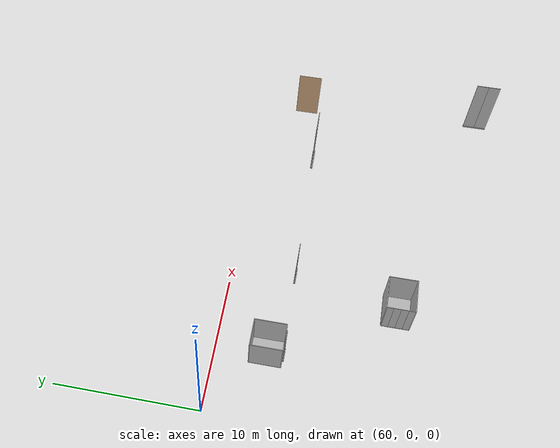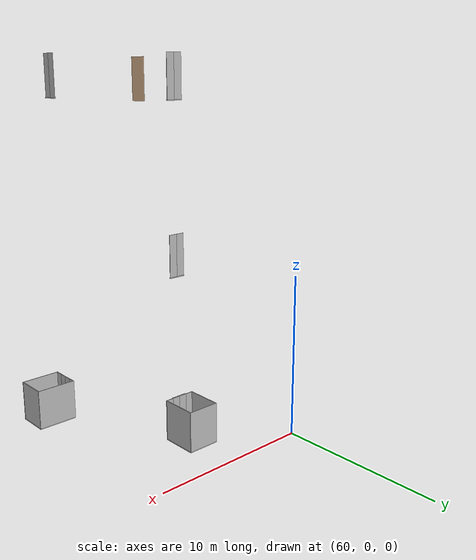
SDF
<sdf version="1.7">
 <world name="world">
  <include><uri>model://sun</uri></include>
  <model name="door6">
   <pose>67.95 -4.0 20.0 0 0 -1.5707963267948966</pose>
   <plugin name="door" filename="libdoor.so">
    <v_max_door>0.5</v_max_door>
    <a_max_door>0.3</a_max_door>
    <a_nom_door>0.15</a_nom_door>
    <dx_min_door>0.01</dx_min_door>
    <f_max_door>500.0</f_max_door>
    <door name="door6" type="SwingDoor" left_joint_name="left_joint" right_joint_name="empty_joint"/>
   </plugin>
   <link name="left">
    <pose>0 0 1.11 0 0 0</pose>
    <visual name="left_visual">
     <geometry><box><size>0.99 0.03 2.2</size></box></geometry>
     <material><ambient>0.5 0.25 0 0.6</ambient><diffuse>0.5 0.25 0 0.6</diffuse></material>
    </visual>
    <collision name="left_collision">
     <geometry><box><size>0.99 0.03 2.2</size></box></geometry>
     <surface><contact><collide_bitmask>0x02</collide_bitmask></contact></surface>
    </collision>
    <inertial>
     <mass>50.0</mass>
     <inertia><ixx>20.17041666666667</ixx><iyy>24.250416666666673</iyy><izz>4.0875</izz></inertia>
    </inertial>
   </link>
   <joint name="left_joint" type="revolute">
    <parent>world</parent>
    <child>left</child>
    <axis><xyz>0 0 1</xyz><limit><lower>-1.57</lower><upper>0</upper></limit></axis>
    <pose>0.5 0 0 0 0 0</pose>
   </joint>
  </model>
  <model name="ShaftDoor_cargo_lift2_L1_door">
   <pose>65.0625 -4.675 0.0 0 0 0.0</pose>
   <link name="right_door">
    <pose>0.25 0 1.25 0 0 0</pose>
    <visual name="right_door_visual">
     <geometry><box><size>0.5 0.03 2.5</size></box></geometry>
     <material>
      <ambient>0.5 0.5 0.5 1</ambient>
      <diffuse>0.7 0.7 0.7 1</diffuse>
      <specular>0.6 0.6 0.6 1</specular>
      <emissive>0.1 0.1 0.1 1</emissive>
     </material>
    </visual>
    <collision name="right_door_collision">
     <geometry><box><size>0.5 0.03 2.5</size></box></geometry>
     <surface><contact><collide_bitmask>0x02</collide_bitmask></contact></surface>
    </collision>
   </link>
   <joint name="right_joint" type="prismatic">
    <parent>world</parent>
    <child>right_door</child>
    <axis><xyz>1 0 0</xyz><limit><lower>0</lower><upper>0.5</upper></limit></axis>
   </joint>
   <link name="left_door">
    <pose>-0.25 0 1.25 0 0 0</pose>
    <visual name="left_door_visual">
     <geometry><box><size>0.5 0.03 2.5</size></box></geometry>
     <material>
      <ambient>0.5 0.5 0.5 1</ambient>
      <diffuse>0.7 0.7 0.7 1</diffuse>
      <specular>0.6 0.6 0.6 1</specular>
      <emissive>0.1 0.1 0.1 1</emissive>
     </material>
    </visual>
    <collision name="left_door_collision">
     <geometry><box><size>0.5 0.03 2.5</size></box></geometry>
     <surface><contact><collide_bitmask>0x02</collide_bitmask></contact></surface>
    </collision>
   </link>
   <joint name="left_joint" type="prismatic">
    <parent>world</parent>
    <child>left_door</child>
    <axis><xyz>1 0 0</xyz><limit><lower>-0.5</lower><upper>0</upper></limit></axis>
   </joint>
   <link name="ramp">
    <pose>0 0 -0.025 0 0 0</pose>
    <visual name="ramp_visual">
     <geometry><box><size>1.0 0.1 0.05</size></box></geometry>
     <material>
      <ambient>0.5 0.5 0.5 1</ambient>
      <diffuse>0.7 0.7 0.7 1</diffuse>
      <specular>0.6 0.6 0.6 1</specular>
      <emissive>0.1 0.1 0.1 1</emissive>
     </material>
    </visual>
    <collision name="ramp_collision">
     <geometry><box><size>1.0 0.1 0.05</size></box></geometry>
     <surface><contact><collide_bitmask>0x02</collide_bitmask></contact></surface>
    </collision>
   </link>
   <joint name="ramp_joint" type="fixed"><parent>world</parent><child>ramp</child></joint>
   <plugin name="door" filename="libdoor.so">
    <v_max_door>0.3</v_max_door>
    <a_max_door>0.2</a_max_door>
    <a_nom_door>0.1</a_nom_door>
    <dx_min_door>0.0001</dx_min_door>
    <f_max_door>35.0</f_max_door>
    <door left_joint_name="left_joint" name="ShaftDoor_cargo_lift2_L1_door" right_joint_name="right_joint" type="DoubleSlidingDoor"/>
   </plugin>
  </model>
  <model name="ShaftDoor_cargo_lift2_L2_door">
   <pose>65.0625 -4.675 10.0 0 0 0.0</pose>
   <link name="right_door">
    <pose>0.25 0 1.25 0 0 0</pose>
    <visual name="right_door_visual">
     <geometry><box><size>0.5 0.03 2.5</size></box></geometry>
     <material>
      <ambient>0.5 0.5 0.5 1</ambient>
      <diffuse>0.7 0.7 0.7 1</diffuse>
      <specular>0.6 0.6 0.6 1</specular>
      <emissive>0.1 0.1 0.1 1</emissive>
     </material>
    </visual>
    <collision name="right_door_collision">
     <geometry><box><size>0.5 0.03 2.5</size></box></geometry>
     <surface><contact><collide_bitmask>0x02</collide_bitmask></contact></surface>
    </collision>
   </link>
   <joint name="right_joint" type="prismatic">
    <parent>world</parent>
    <child>right_door</child>
    <axis><xyz>1 0 0</xyz><limit><lower>0</lower><upper>0.5</upper></limit></axis>
   </joint>
   <link name="left_door">
    <pose>-0.25 0 1.25 0 0 0</pose>
    <visual name="left_door_visual">
     <geometry><box><size>0.5 0.03 2.5</size></box></geometry>
     <material>
      <ambient>0.5 0.5 0.5 1</ambient>
      <diffuse>0.7 0.7 0.7 1</diffuse>
      <specular>0.6 0.6 0.6 1</specular>
      <emissive>0.1 0.1 0.1 1</emissive>
     </material>
    </visual>
    <collision name="left_door_collision">
     <geometry><box><size>0.5 0.03 2.5</size></box></geometry>
     <surface><contact><collide_bitmask>0x02</collide_bitmask></contact></surface>
    </collision>
   </link>
   <joint name="left_joint" type="prismatic">
    <parent>world</parent>
    <child>left_door</child>
    <axis><xyz>1 0 0</xyz><limit><lower>-0.5</lower><upper>0</upper></limit></axis>
   </joint>
   <link name="ramp">
    <pose>0 0 -0.025 0 0 0</pose>
    <visual name="ramp_visual">
     <geometry><box><size>1.0 0.1 0.05</size></box></geometry>
     <material>
      <ambient>0.5 0.5 0.5 1</ambient>
      <diffuse>0.7 0.7 0.7 1</diffuse>
      <specular>0.6 0.6 0.6 1</specular>
      <emissive>0.1 0.1 0.1 1</emissive>
     </material>
    </visual>
    <collision name="ramp_collision">
     <geometry><box><size>1.0 0.1 0.05</size></box></geometry>
     <surface><contact><collide_bitmask>0x02</collide_bitmask></contact></surface>
    </collision>
   </link>
   <joint name="ramp_joint" type="fixed"><parent>world</parent><child>ramp</child></joint>
   <plugin name="door" filename="libdoor.so">
    <v_max_door>0.3</v_max_door>
    <a_max_door>0.2</a_max_door>
    <a_nom_door>0.1</a_nom_door>
    <dx_min_door>0.0001</dx_min_door>
    <f_max_door>35.0</f_max_door>
    <door left_joint_name="left_joint" name="ShaftDoor_cargo_lift2_L2_door" right_joint_name="right_joint" type="DoubleSlidingDoor"/>
   </plugin>
  </model>
  <model name="ShaftDoor_cargo_lift2_L3_door">
   <pose>65.0625 -4.675 20.0 0 0 0.0</pose>
   <link name="right_door">
    <pose>0.25 0 1.25 0 0 0</pose>
    <visual name="right_door_visual">
     <geometry><box><size>0.5 0.03 2.5</size></box></geometry>
     <material>
      <ambient>0.5 0.5 0.5 1</ambient>
      <diffuse>0.7 0.7 0.7 1</diffuse>
      <specular>0.6 0.6 0.6 1</specular>
      <emissive>0.1 0.1 0.1 1</emissive>
     </material>
    </visual>
    <collision name="right_door_collision">
     <geometry><box><size>0.5 0.03 2.5</size></box></geometry>
     <surface><contact><collide_bitmask>0x02</collide_bitmask></contact></surface>
    </collision>
   </link>
   <joint name="right_joint" type="prismatic">
    <parent>world</parent>
    <child>right_door</child>
    <axis><xyz>1 0 0</xyz><limit><lower>0</lower><upper>0.5</upper></limit></axis>
   </joint>
   <link name="left_door">
    <pose>-0.25 0 1.25 0 0 0</pose>
    <visual name="left_door_visual">
     <geometry><box><size>0.5 0.03 2.5</size></box></geometry>
     <material>
      <ambient>0.5 0.5 0.5 1</ambient>
      <diffuse>0.7 0.7 0.7 1</diffuse>
      <specular>0.6 0.6 0.6 1</specular>
      <emissive>0.1 0.1 0.1 1</emissive>
     </material>
    </visual>
    <collision name="left_door_collision">
     <geometry><box><size>0.5 0.03 2.5</size></box></geometry>
     <surface><contact><collide_bitmask>0x02</collide_bitmask></contact></surface>
    </collision>
   </link>
   <joint name="left_joint" type="prismatic">
    <parent>world</parent>
    <child>left_door</child>
    <axis><xyz>1 0 0</xyz><limit><lower>-0.5</lower><upper>0</upper></limit></axis>
   </joint>
   <link name="ramp">
    <pose>0 0 -0.025 0 0 0</pose>
    <visual name="ramp_visual">
     <geometry><box><size>1.0 0.1 0.05</size></box></geometry>
     <material>
      <ambient>0.5 0.5 0.5 1</ambient>
      <diffuse>0.7 0.7 0.7 1</diffuse>
      <specular>0.6 0.6 0.6 1</specular>
      <emissive>0.1 0.1 0.1 1</emissive>
     </material>
    </visual>
    <collision name="ramp_collision">
     <geometry><box><size>1.0 0.1 0.05</size></box></geometry>
     <surface><contact><collide_bitmask>0x02</collide_bitmask></contact></surface>
    </collision>
   </link>
   <joint name="ramp_joint" type="fixed"><parent>world</parent><child>ramp</child></joint>
   <plugin name="door" filename="libdoor.so">
    <v_max_door>0.3</v_max_door>
    <a_max_door>0.2</a_max_door>
    <a_nom_door>0.1</a_nom_door>
    <dx_min_door>0.0001</dx_min_door>
    <f_max_door>35.0</f_max_door>
    <door left_joint_name="left_joint" name="ShaftDoor_cargo_lift2_L3_door" right_joint_name="right_joint" type="DoubleSlidingDoor"/>
   </plugin>
  </model>
  <model name="cargo_lift2">
   <link name="platform">
    <inertial>
     <mass>1200</mass>
     <inertia><ixx>400.25000000000006</ixx><iyy>506.50000000000006</iyy><izz>906.25</izz></inertia>
    </inertial>
    <visual name="floor">
     <pose>0 0 -0.025 0 0 0</pose>
     <geometry><box><size>2.0 2.25 0.05</size></box></geometry>
     <material>
      <ambient>0.5 0.5 0.5 1</ambient>
      <diffuse>0.7 0.7 0.7 1</diffuse>
      <specular>0.6 0.6 0.6 1</specular>
      <emissive>0.1 0.1 0.1 1</emissive>
     </material>
    </visual>
    <collision name="floor">
     <pose>0 0 -0.025 0 0 0</pose>
     <geometry><box><size>2.0 2.25 0.05</size></box></geometry>
     <surface><contact><collide_bitmask>0x01</collide_bitmask></contact></surface>
    </collision>
    <visual name="frontwall1">
     <pose>0.0 1.1 1.25 0 0 0</pose>
     <geometry><box><size>2.0 0.05 2.5</size></box></geometry>
     <material>
      <ambient>0.5 0.5 0.5 1</ambient>
      <diffuse>0.7 0.7 0.7 1</diffuse>
      <specular>0.6 0.6 0.6 1</specular>
      <emissive>0.1 0.1 0.1 1</emissive>
     </material>
    </visual>
    <collision name="frontwall1">
     <pose>0.0 1.1 1.25 0 0 0</pose>
     <geometry><box><size>2.0 0.05 2.5</size></box></geometry>
     <surface><contact><collide_bitmask>0x01</collide_bitmask></contact></surface>
    </collision>
    <visual name="backwall1">
     <pose>-0.75 -1.1 1.25 0 0 0</pose>
     <geometry><box><size>0.5 0.05 2.5</size></box></geometry>
     <material>
      <ambient>0.5 0.5 0.5 1</ambient>
      <diffuse>0.7 0.7 0.7 1</diffuse>
      <specular>0.6 0.6 0.6 1</specular>
      <emissive>0.1 0.1 0.1 1</emissive>
     </material>
    </visual>
    <collision name="backwall1">
     <pose>-0.75 -1.1 1.25 0 0 0</pose>
     <geometry><box><size>0.5 0.05 2.5</size></box></geometry>
     <surface><contact><collide_bitmask>0x01</collide_bitmask></contact></surface>
    </collision>
    <visual name="backwall2">
     <pose>0.75 -1.1 1.25 0 0 0</pose>
     <geometry><box><size>0.5 0.05 2.5</size></box></geometry>
     <material>
      <ambient>0.5 0.5 0.5 1</ambient>
      <diffuse>0.7 0.7 0.7 1</diffuse>
      <specular>0.6 0.6 0.6 1</specular>
      <emissive>0.1 0.1 0.1 1</emissive>
     </material>
    </visual>
    <collision name="backwall2">
     <pose>0.75 -1.1 1.25 0 0 0</pose>
     <geometry><box><size>0.5 0.05 2.5</size></box></geometry>
     <surface><contact><collide_bitmask>0x01</collide_bitmask></contact></surface>
    </collision>
    <visual name="leftwall1">
     <pose>-0.975 0.0 1.25 0 0 1.5707963267948966</pose>
     <geometry><box><size>2.15 0.05 2.5</size></box></geometry>
     <material>
      <ambient>0.5 0.5 0.5 1</ambient>
      <diffuse>0.7 0.7 0.7 1</diffuse>
      <specular>0.6 0.6 0.6 1</specular>
      <emissive>0.1 0.1 0.1 1</emissive>
     </material>
    </visual>
    <collision name="leftwall1">
     <pose>-0.975 0.0 1.25 0 0 1.5707963267948966</pose>
     <geometry><box><size>2.15 0.05 2.5</size></box></geometry>
     <surface><contact><collide_bitmask>0x01</collide_bitmask></contact></surface>
    </collision>
    <visual name="rightwall1">
     <pose>0.975 0.0 1.25 0 0 1.5707963267948966</pose>
     <geometry><box><size>2.15 0.05 2.5</size></box></geometry>
     <material>
      <ambient>0.5 0.5 0.5 1</ambient>
      <diffuse>0.7 0.7 0.7 1</diffuse>
      <specular>0.6 0.6 0.6 1</specular>
      <emissive>0.1 0.1 0.1 1</emissive>
     </material>
    </visual>
    <collision name="rightwall1">
     <pose>0.975 0.0 1.25 0 0 1.5707963267948966</pose>
     <geometry><box><size>2.15 0.05 2.5</size></box></geometry>
     <surface><contact><collide_bitmask>0x01</collide_bitmask></contact></surface>
    </collision>
   </link>
   <joint name="cabin_joint" type="prismatic">
    <parent>world</parent>
    <child>platform</child>
    <axis><xyz>0 0 1</xyz></axis>
   </joint>
   <model name="CabinDoor_cargo_lift2_door">
    <pose>0.0 -1.1 0 0 0 0.0</pose>
    <link name="right_door">
     <pose>0.25 0 1.25 0 0 0</pose>
     <visual name="right_door_visual">
      <geometry><box><size>0.5 0.03 2.5</size></box></geometry>
      <material>
       <ambient>0.5 0.5 0.5 1</ambient>
       <diffuse>0.7 0.7 0.7 1</diffuse>
       <specular>0.6 0.6 0.6 1</specular>
       <emissive>0.1 0.1 0.1 1</emissive>
      </material>
     </visual>
     <collision name="right_door_collision">
      <geometry><box><size>0.5 0.03 2.5</size></box></geometry>
      <surface><contact><collide_bitmask>0x02</collide_bitmask></contact></surface>
     </collision>
    </link>
    <joint name="right_joint" type="prismatic">
     <parent>platform</parent>
     <child>right_door</child>
     <axis><xyz>1 0 0</xyz><limit><lower>0</lower><upper>0.5</upper></limit></axis>
    </joint>
    <link name="left_door">
     <pose>-0.25 0 1.25 0 0 0</pose>
     <visual name="left_door_visual">
      <geometry><box><size>0.5 0.03 2.5</size></box></geometry>
      <material>
       <ambient>0.5 0.5 0.5 1</ambient>
       <diffuse>0.7 0.7 0.7 1</diffuse>
       <specular>0.6 0.6 0.6 1</specular>
       <emissive>0.1 0.1 0.1 1</emissive>
      </material>
     </visual>
     <collision name="left_door_collision">
      <geometry><box><size>0.5 0.03 2.5</size></box></geometry>
      <surface><contact><collide_bitmask>0x02</collide_bitmask></contact></surface>
     </collision>
    </link>
    <joint name="left_joint" type="prismatic">
     <parent>platform</parent>
     <child>left_door</child>
     <axis><xyz>1 0 0</xyz><limit><lower>-0.5</lower><upper>0</upper></limit></axis>
    </joint>
    <plugin name="door" filename="libdoor.so">
     <v_max_door>0.3</v_max_door>
     <a_max_door>0.2</a_max_door>
     <a_nom_door>0.1</a_nom_door>
     <dx_min_door>0.0001</dx_min_door>
     <f_max_door>35.0</f_max_door>
     <door left_joint_name="left_joint" name="CabinDoor_cargo_lift2_door" right_joint_name="right_joint" type="DoubleSlidingDoor"/>
    </plugin>
   </model>
   <plugin name="lift" filename="liblift.so">
    <lift_name>cargo_lift2</lift_name>
    <floor name="L1" elevation="0.0">
     <door_pair cabin_door="CabinDoor_cargo_lift2_door" shaft_door="ShaftDoor_cargo_lift2_L1_door"/>
    </floor>
    <floor name="L2" elevation="10.0">
     <door_pair cabin_door="CabinDoor_cargo_lift2_door" shaft_door="ShaftDoor_cargo_lift2_L2_door"/>
    </floor>
    <floor name="L3" elevation="20.0">
     <door_pair cabin_door="CabinDoor_cargo_lift2_door" shaft_door="ShaftDoor_cargo_lift2_L3_door"/>
    </floor>
    <initial_floor>L1</initial_floor>
    <v_max_cabin>2.0</v_max_cabin>
    <a_max_cabin>1.2</a_max_cabin>
    <a_nom_cabin>1.0</a_nom_cabin>
    <dx_min_cabin>0.001</dx_min_cabin>
    <f_max_cabin>25323.0</f_max_cabin>
    <cabin_joint_name>cabin_joint</cabin_joint_name>
   </plugin>
   <pose>65.0625 -3.5 0 0 0 0.0</pose>
  </model>
  <model name="ShaftDoor_guest_lift3_L3_door">
   <pose>68.525 -11.875 20.0 0 0 1.5708</pose>
   <link name="right_door">
    <pose>0.25 0 1.25 0 0 0</pose>
    <visual name="right_door_visual">
     <geometry><box><size>0.5 0.03 2.5</size></box></geometry>
     <material>
      <ambient>0.5 0.5 0.5 1</ambient>
      <diffuse>0.7 0.7 0.7 1</diffuse>
      <specular>0.6 0.6 0.6 1</specular>
      <emissive>0.1 0.1 0.1 1</emissive>
     </material>
    </visual>
    <collision name="right_door_collision">
     <geometry><box><size>0.5 0.03 2.5</size></box></geometry>
     <surface><contact><collide_bitmask>0x02</collide_bitmask></contact></surface>
    </collision>
   </link>
   <joint name="right_joint" type="prismatic">
    <parent>world</parent>
    <child>right_door</child>
    <axis><xyz>1 0 0</xyz><limit><lower>0</lower><upper>0.5</upper></limit></axis>
   </joint>
   <link name="left_door">
    <pose>-0.25 0 1.25 0 0 0</pose>
    <visual name="left_door_visual">
     <geometry><box><size>0.5 0.03 2.5</size></box></geometry>
     <material>
      <ambient>0.5 0.5 0.5 1</ambient>
      <diffuse>0.7 0.7 0.7 1</diffuse>
      <specular>0.6 0.6 0.6 1</specular>
      <emissive>0.1 0.1 0.1 1</emissive>
     </material>
    </visual>
    <collision name="left_door_collision">
     <geometry><box><size>0.5 0.03 2.5</size></box></geometry>
     <surface><contact><collide_bitmask>0x02</collide_bitmask></contact></surface>
    </collision>
   </link>
   <joint name="left_joint" type="prismatic">
    <parent>world</parent>
    <child>left_door</child>
    <axis><xyz>1 0 0</xyz><limit><lower>-0.5</lower><upper>0</upper></limit></axis>
   </joint>
   <link name="ramp">
    <pose>0 0 -0.025 0 0 0</pose>
    <visual name="ramp_visual">
     <geometry><box><size>1.0 0.1 0.05</size></box></geometry>
     <material>
      <ambient>0.5 0.5 0.5 1</ambient>
      <diffuse>0.7 0.7 0.7 1</diffuse>
      <specular>0.6 0.6 0.6 1</specular>
      <emissive>0.1 0.1 0.1 1</emissive>
     </material>
    </visual>
    <collision name="ramp_collision">
     <geometry><box><size>1.0 0.1 0.05</size></box></geometry>
     <surface><contact><collide_bitmask>0x02</collide_bitmask></contact></surface>
    </collision>
   </link>
   <joint name="ramp_joint" type="fixed"><parent>world</parent><child>ramp</child></joint>
   <plugin name="door" filename="libdoor.so">
    <v_max_door>0.3</v_max_door>
    <a_max_door>0.2</a_max_door>
    <a_nom_door>0.1</a_nom_door>
    <dx_min_door>0.0001</dx_min_door>
    <f_max_door>35.0</f_max_door>
    <door left_joint_name="left_joint" name="ShaftDoor_guest_lift3_L3_door" right_joint_name="right_joint" type="DoubleSlidingDoor"/>
   </plugin>
  </model>
  <model name="guest_lift3">
   <link name="platform">
    <inertial>
     <mass>1200</mass>
     <inertia><ixx>625.25</ixx><iyy>400.25000000000006</iyy><izz>1025.0</izz></inertia>
    </inertial>
    <visual name="floor">
     <pose>0 0 -0.025 0 0 0</pose>
     <geometry><box><size>2.5 2.0 0.05</size></box></geometry>
     <material>
      <ambient>0.5 0.5 0.5 1</ambient>
      <diffuse>0.7 0.7 0.7 1</diffuse>
      <specular>0.6 0.6 0.6 1</specular>
      <emissive>0.1 0.1 0.1 1</emissive>
     </material>
    </visual>
    <collision name="floor">
     <pose>0 0 -0.025 0 0 0</pose>
     <geometry><box><size>2.5 2.0 0.05</size></box></geometry>
     <surface><contact><collide_bitmask>0x01</collide_bitmask></contact></surface>
    </collision>
    <visual name="frontwall1">
     <pose>0.0 0.975 1.25 0 0 0</pose>
     <geometry><box><size>2.5 0.05 2.5</size></box></geometry>
     <material>
      <ambient>0.5 0.5 0.5 1</ambient>
      <diffuse>0.7 0.7 0.7 1</diffuse>
      <specular>0.6 0.6 0.6 1</specular>
      <emissive>0.1 0.1 0.1 1</emissive>
     </material>
    </visual>
    <collision name="frontwall1">
     <pose>0.0 0.975 1.25 0 0 0</pose>
     <geometry><box><size>2.5 0.05 2.5</size></box></geometry>
     <surface><contact><collide_bitmask>0x01</collide_bitmask></contact></surface>
    </collision>
    <visual name="backwall1">
     <pose>0.0 -0.975 1.25 0 0 0</pose>
     <geometry><box><size>2.5 0.05 2.5</size></box></geometry>
     <material>
      <ambient>0.5 0.5 0.5 1</ambient>
      <diffuse>0.7 0.7 0.7 1</diffuse>
      <specular>0.6 0.6 0.6 1</specular>
      <emissive>0.1 0.1 0.1 1</emissive>
     </material>
    </visual>
    <collision name="backwall1">
     <pose>0.0 -0.975 1.25 0 0 0</pose>
     <geometry><box><size>2.5 0.05 2.5</size></box></geometry>
     <surface><contact><collide_bitmask>0x01</collide_bitmask></contact></surface>
    </collision>
    <visual name="leftwall1">
     <pose>-1.225 -0.725 1.25 0 0 1.5707963267948966</pose>
     <geometry><box><size>0.44999999999999996 0.05 2.5</size></box></geometry>
     <material>
      <ambient>0.5 0.5 0.5 1</ambient>
      <diffuse>0.7 0.7 0.7 1</diffuse>
      <specular>0.6 0.6 0.6 1</specular>
      <emissive>0.1 0.1 0.1 1</emissive>
     </material>
    </visual>
    <collision name="leftwall1">
     <pose>-1.225 -0.725 1.25 0 0 1.5707963267948966</pose>
     <geometry><box><size>0.44999999999999996 0.05 2.5</size></box></geometry>
     <surface><contact><collide_bitmask>0x01</collide_bitmask></contact></surface>
    </collision>
    <visual name="leftwall2">
     <pose>-1.225 0.725 1.25 0 0 1.5707963267948966</pose>
     <geometry><box><size>0.44999999999999996 0.05 2.5</size></box></geometry>
     <material>
      <ambient>0.5 0.5 0.5 1</ambient>
      <diffuse>0.7 0.7 0.7 1</diffuse>
      <specular>0.6 0.6 0.6 1</specular>
      <emissive>0.1 0.1 0.1 1</emissive>
     </material>
    </visual>
    <collision name="leftwall2">
     <pose>-1.225 0.725 1.25 0 0 1.5707963267948966</pose>
     <geometry><box><size>0.44999999999999996 0.05 2.5</size></box></geometry>
     <surface><contact><collide_bitmask>0x01</collide_bitmask></contact></surface>
    </collision>
    <visual name="rightwall1">
     <pose>1.225 0.0 1.25 0 0 1.5707963267948966</pose>
     <geometry><box><size>1.9 0.05 2.5</size></box></geometry>
     <material>
      <ambient>0.5 0.5 0.5 1</ambient>
      <diffuse>0.7 0.7 0.7 1</diffuse>
      <specular>0.6 0.6 0.6 1</specular>
      <emissive>0.1 0.1 0.1 1</emissive>
     </material>
    </visual>
    <collision name="rightwall1">
     <pose>1.225 0.0 1.25 0 0 1.5707963267948966</pose>
     <geometry><box><size>1.9 0.05 2.5</size></box></geometry>
     <surface><contact><collide_bitmask>0x01</collide_bitmask></contact></surface>
    </collision>
   </link>
   <joint name="cabin_joint" type="prismatic">
    <parent>world</parent>
    <child>platform</child>
    <axis><xyz>0 0 1</xyz></axis>
   </joint>
   <model name="CabinDoor_guest_lift3_door">
    <pose>-1.225 0.0 0 0 0 1.5708</pose>
    <link name="right_door">
     <pose>0.25 0 1.25 0 0 0</pose>
     <visual name="right_door_visual">
      <geometry><box><size>0.5 0.03 2.5</size></box></geometry>
      <material>
       <ambient>0.5 0.5 0.5 1</ambient>
       <diffuse>0.7 0.7 0.7 1</diffuse>
       <specular>0.6 0.6 0.6 1</specular>
       <emissive>0.1 0.1 0.1 1</emissive>
      </material>
     </visual>
     <collision name="right_door_collision">
      <geometry><box><size>0.5 0.03 2.5</size></box></geometry>
      <surface><contact><collide_bitmask>0x02</collide_bitmask></contact></surface>
     </collision>
    </link>
    <joint name="right_joint" type="prismatic">
     <parent>platform</parent>
     <child>right_door</child>
     <axis><xyz>1 0 0</xyz><limit><lower>0</lower><upper>0.5</upper></limit></axis>
    </joint>
    <link name="left_door">
     <pose>-0.25 0 1.25 0 0 0</pose>
     <visual name="left_door_visual">
      <geometry><box><size>0.5 0.03 2.5</size></box></geometry>
      <material>
       <ambient>0.5 0.5 0.5 1</ambient>
       <diffuse>0.7 0.7 0.7 1</diffuse>
       <specular>0.6 0.6 0.6 1</specular>
       <emissive>0.1 0.1 0.1 1</emissive>
      </material>
     </visual>
     <collision name="left_door_collision">
      <geometry><box><size>0.5 0.03 2.5</size></box></geometry>
      <surface><contact><collide_bitmask>0x02</collide_bitmask></contact></surface>
     </collision>
    </link>
    <joint name="left_joint" type="prismatic">
     <parent>platform</parent>
     <child>left_door</child>
     <axis><xyz>1 0 0</xyz><limit><lower>-0.5</lower><upper>0</upper></limit></axis>
    </joint>
    <plugin name="door" filename="libdoor.so">
     <v_max_door>0.3</v_max_door>
     <a_max_door>0.2</a_max_door>
     <a_nom_door>0.1</a_nom_door>
     <dx_min_door>0.0001</dx_min_door>
     <f_max_door>35.0</f_max_door>
     <door left_joint_name="left_joint" name="CabinDoor_guest_lift3_door" right_joint_name="right_joint" type="DoubleSlidingDoor"/>
    </plugin>
   </model>
   <plugin name="lift" filename="liblift.so">
    <lift_name>guest_lift3</lift_name>
    <floor name="L1" elevation="0.0">
     <door_pair cabin_door="CabinDoor_guest_lift3_door" shaft_door="ShaftDoor_guest_lift3_L1_door"/>
    </floor>
    <floor name="L2" elevation="10.0">
     <door_pair cabin_door="CabinDoor_guest_lift3_door" shaft_door="ShaftDoor_guest_lift3_L2_door"/>
    </floor>
    <floor name="L3" elevation="20.0">
     <door_pair cabin_door="CabinDoor_guest_lift3_door" shaft_door="ShaftDoor_guest_lift3_L3_door"/>
    </floor>
    <initial_floor>L1</initial_floor>
    <v_max_cabin>2.0</v_max_cabin>
    <a_max_cabin>1.2</a_max_cabin>
    <a_nom_cabin>1.0</a_nom_cabin>
    <dx_min_cabin>0.001</dx_min_cabin>
    <f_max_cabin>25323.0</f_max_cabin>
    <cabin_joint_name>cabin_joint</cabin_joint_name>
   </plugin>
   <pose>69.825 -11.875 0 0 0 0.0</pose>
  </model>
 </world>
</sdf>
